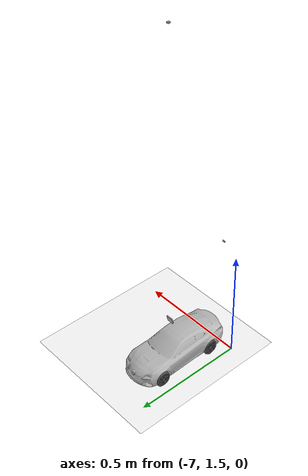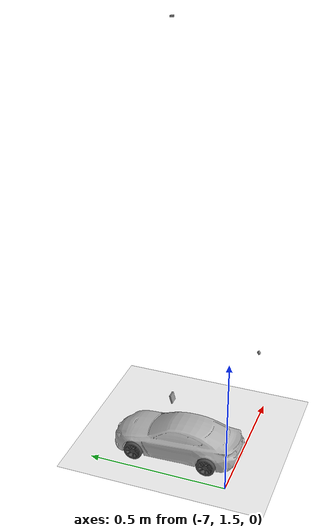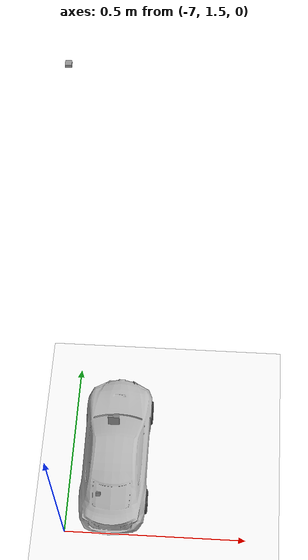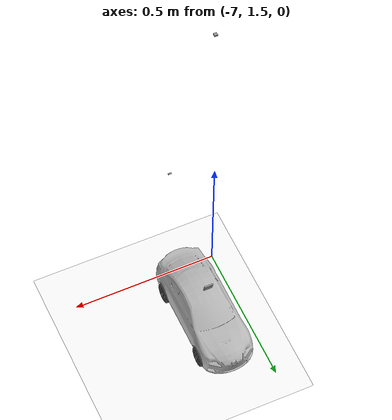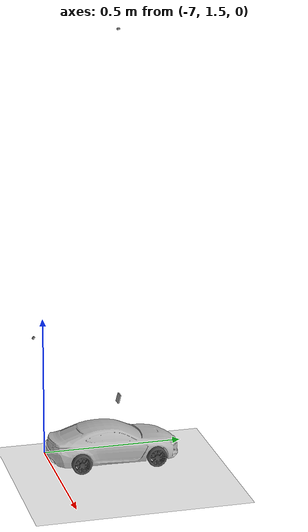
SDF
<sdf version="1.7">
 <world name="default">
  <light name="sun" type="directional">
   <pose>0 0 10 0 -0 0</pose>
   <diffuse>0.8 0.8 0.8 1</diffuse>
   <specular>0.2 0.2 0.2 1</specular>
   <attenuation>
    <range>1000</range>
    <constant>0.9</constant>
    <linear>0.01</linear>
    <quadratic>0.001</quadratic>
   </attenuation>
   <direction>-0.5 0.1 -0.9</direction>
   <spot><inner_angle>0</inner_angle><outer_angle>0</outer_angle><falloff>0</falloff></spot>
  </light>
  <gravity>0 0 -9.8</gravity>
  <magnetic_field>6e-06 2.3e-05 -4.2e-05</magnetic_field>
  <atmosphere type="adiabatic"/>
  <physics type="ode">
   <max_step_size>0.001</max_step_size>
   <real_time_factor>1</real_time_factor>
   <real_time_update_rate>1000</real_time_update_rate>
  </physics>
  <scene><ambient>0.4 0.4 0.4 1</ambient><background>0.7 0.7 0.7 1</background><shadows>1</shadows></scene>
  <spherical_coordinates>
   <surface_model>EARTH_WGS84</surface_model>
   <latitude_deg>0</latitude_deg>
   <longitude_deg>0</longitude_deg>
   <elevation>0</elevation>
   <heading_deg>0</heading_deg>
  </spherical_coordinates>
  <model name="track">
   <static>1</static>
   <link name="link">
    <collision name="collision">
     <geometry><plane><normal>0 0 1</normal><size>14.68 14.99</size></plane></geometry>
     <surface>
      <contact><collide_bitmask>65535</collide_bitmask></contact>
      <friction><ode><mu>1</mu><mu2>1</mu2></ode></friction>
     </surface>
    </collision>
    <visual name="visual">
     <geometry><plane><normal>0 0 1</normal><size>14.68 14.99</size></plane></geometry>
     <material>
      <ambient>1 1 1 1</ambient>
      <diffuse>1 1 1 1</diffuse>
      <specular>0 0 0 0</specular>
      <emissive>1 1 1 1</emissive>
      <script>
       <uri>model://track/materials/scripts</uri>
       <uri>model://track/materials/textures</uri>
       <name>BFMC_MATERIAL</name>
      </script>
     </material>
    </visual>
   </link>
  </model>
  <model name="automobile">
   <link name="chassis::link">
    <inertial>
     <mass>0.26244</mass>
     <inertia>
      <ixx>0.00283444</ixx>
      <ixy>0</ixy>
      <ixz>0</ixz>
      <iyy>0.00039867</iyy>
      <iyz>0</iyz>
      <izz>0.00323293</izz>
     </inertia>
    </inertial>
    <pose>0 0 0 0 -0 1.5708</pose>
    <visual name="visual">
     <pose>0 0 -0.0065 0 0 -1.57079</pose>
     <geometry><mesh><uri>model://chassis/meshes/chassisV5.dae</uri><scale>1 1 1</scale></mesh></geometry>
     <material>
      <lighting>1</lighting>
      <shader type="vertex"><normal_map>__default__</normal_map></shader>
      <ambient>0.6 0.6 0.6 1</ambient>
      <diffuse>0.85 0.85 0.85 1</diffuse>
      <specular>0.6 0.6 0.6 1</specular>
      <emissive>0 0 0 1</emissive>
      <script><name>ModelPreview_4::chassis::link::visual_MATERIAL_</name><uri>__default__</uri></script>
     </material>
    </visual>
    <collision name="collision">
     <geometry><box><size>0.135 0.36 0.002</size></box></geometry>
     <surface>
      <friction>
       <ode><mu>1</mu><mu2>1</mu2><fdir1>0 0 0</fdir1><slip1>0</slip1><slip2>0</slip2></ode>
       <torsional>
        <coefficient>1</coefficient>
        <patch_radius>0</patch_radius>
        <surface_radius>0</surface_radius>
        <use_patch_radius>1</use_patch_radius>
        <ode><slip>0</slip></ode>
       </torsional>
      </friction>
      <bounce><restitution_coefficient>0</restitution_coefficient><threshold>1e+06</threshold></bounce>
      <contact>
       <collide_without_contact>0</collide_without_contact>
       <collide_without_contact_bitmask>1</collide_without_contact_bitmask>
       <collide_bitmask>1</collide_bitmask>
       <ode>
        <soft_cfm>0</soft_cfm>
        <soft_erp>0.2</soft_erp>
        <kp>1e+13</kp>
        <kd>1</kd>
        <max_vel>0.01</max_vel>
        <min_depth>0</min_depth>
       </ode>
       <bullet>
        <split_impulse>1</split_impulse>
        <split_impulse_penetration_threshold>-0.01</split_impulse_penetration_threshold>
        <soft_cfm>0</soft_cfm>
        <soft_erp>0.2</soft_erp>
        <kp>1e+13</kp>
        <kd>1</kd>
       </bullet>
      </contact>
     </surface>
    </collision>
   </link>
   <link name="cam_birdeye_REC::link_camera">
    <inertial>
     <mass>0.001</mass>
     <inertia><ixx>4.1e-07</ixx><ixy>0</ixy><ixz>0</ixz><iyy>7.9e-07</iyy><iyz>0</iyz><izz>4.1e-07</izz></inertia>
    </inertial>
    <pose>0 0 1.5 0 1.57079 0</pose>
    <sensor name="camera1" type="camera">
     <update_rate>30</update_rate>
     <camera name="head">
      <horizontal_fov>2</horizontal_fov>
      <image><width>640</width><height>480</height><format>R8G8B8</format></image>
      <clip><near>0.02</near><far>100</far></clip>
      <noise><type>gaussian</type><mean>0</mean><stddev>0</stddev></noise>
     </camera>
     <plugin name="camera_controller" filename="libgazebo_ros_camera.so">
      <alwaysOn>1</alwaysOn>
      <updateRate>0.0</updateRate>
      <cameraName>/rcCar/camera_birdeye</cameraName>
      <imageTopicName>image_raw</imageTopicName>
      <cameraInfoTopicName>camera_info</cameraInfoTopicName>
      <frameName>cam_birdeye_REC::link_camera</frameName>
      <ros>
       <namespace>camera</namespace>
       <remapping>image_raw:=image</remapping>
       <remapping>camera_info:=camera_info</remapping>
      </ros>
      <hackBaseline>0.0</hackBaseline>
      <distortionK1>0.0</distortionK1>
      <distortionK2>0.0</distortionK2>
      <distortionK3>0.0</distortionK3>
      <distortionT1>0.0</distortionT1>
      <distortionT2>0.0</distortionT2>
     </plugin>
    </sensor>
    <visual name="visual">
     <geometry><box><size>0.005 0.01 0.01</size></box></geometry>
     <material>
      <lighting>1</lighting>
      <script><uri>file://media/materials/scripts/gazebo.material</uri><name>Gazebo/Grey</name></script>
      <shader type="vertex"><normal_map>__default__</normal_map></shader>
      <ambient>0.3 0.3 0.3 1</ambient>
      <diffuse>0.7 0.7 0.7 1</diffuse>
      <specular>0.01 0.01 0.01 1</specular>
      <emissive>0 0 0 1</emissive>
     </material>
    </visual>
    <collision name="collision">
     <geometry><box><size>0.005 0.01 0.01</size></box></geometry>
     <surface>
      <friction>
       <ode><mu>1</mu><mu2>1</mu2><fdir1>0 0 0</fdir1><slip1>0</slip1><slip2>0</slip2></ode>
       <torsional>
        <coefficient>1</coefficient>
        <patch_radius>0</patch_radius>
        <surface_radius>0</surface_radius>
        <use_patch_radius>1</use_patch_radius>
        <ode><slip>0</slip></ode>
       </torsional>
      </friction>
      <bounce><restitution_coefficient>0</restitution_coefficient><threshold>1e+06</threshold></bounce>
      <contact>
       <collide_without_contact>0</collide_without_contact>
       <collide_without_contact_bitmask>1</collide_without_contact_bitmask>
       <collide_bitmask>1</collide_bitmask>
       <ode>
        <soft_cfm>0</soft_cfm>
        <soft_erp>0.2</soft_erp>
        <kp>1e+13</kp>
        <kd>1</kd>
        <max_vel>0.01</max_vel>
        <min_depth>0</min_depth>
       </ode>
       <bullet>
        <split_impulse>1</split_impulse>
        <split_impulse_penetration_threshold>-0.01</split_impulse_penetration_threshold>
        <soft_cfm>0</soft_cfm>
        <soft_erp>0.2</soft_erp>
        <kp>1e+13</kp>
        <kd>1</kd>
       </bullet>
      </contact>
     </surface>
    </collision>
   </link>
   <link name="camera::link_camera">
    <inertial>
     <mass>0.0052875</mass>
     <inertia><ixx>4.1e-07</ixx><ixy>0</ixy><ixz>0</ixz><iyy>7.9e-07</iyy><iyz>0</iyz><izz>4.1e-07</izz></inertia>
    </inertial>
    <pose>0 0 0.2 0 0.2617 0</pose>
    <sensor name="camera1" type="camera">
     <update_rate>30</update_rate>
     <camera name="head">
      <horizontal_fov>1.08559</horizontal_fov>
      <image><width>640</width><height>480</height><format>R8G8B8</format></image>
      <clip><near>0.02</near><far>100</far></clip>
      <noise><type>gaussian</type><mean>0</mean><stddev>0</stddev></noise>
     </camera>
     <plugin name="camera_controller" filename="libgazebo_ros_camera.so">
      <alwaysOn>1</alwaysOn>
      <updateRate>0.0</updateRate>
      <imageTopicName>image_raw</imageTopicName>
      <cameraInfoTopicName>camera_info</cameraInfoTopicName>
      <frameName>camera::link_camera</frameName>
      <ros>
       <namespace>camera_follow</namespace>
       <remapping>image_raw:=image</remapping>
       <remapping>camera_info:=camera_info</remapping>
      </ros>
      <hackBaseline>0.0</hackBaseline>
      <distortionK1>0.0</distortionK1>
      <distortionK2>0.0</distortionK2>
      <distortionK3>0.0</distortionK3>
      <distortionT1>0.0</distortionT1>
      <distortionT2>0.0</distortionT2>
     </plugin>
    </sensor>
    <visual name="visual">
     <geometry><box><size>0.005 0.03 0.03</size></box></geometry>
     <material>
      <lighting>1</lighting>
      <script><uri>file://media/materials/scripts/gazebo.material</uri><name>Gazebo/Grey</name></script>
      <shader type="vertex"><normal_map>__default__</normal_map></shader>
      <ambient>0.3 0.3 0.3 1</ambient>
      <diffuse>0.7 0.7 0.7 1</diffuse>
      <specular>0.01 0.01 0.01 1</specular>
      <emissive>0 0 0 1</emissive>
     </material>
    </visual>
    <collision name="collision">
     <geometry><box><size>0.005 0.03 0.03</size></box></geometry>
     <surface>
      <friction>
       <ode><mu>1</mu><mu2>1</mu2><fdir1>0 0 0</fdir1><slip1>0</slip1><slip2>0</slip2></ode>
       <torsional>
        <coefficient>1</coefficient>
        <patch_radius>0</patch_radius>
        <surface_radius>0</surface_radius>
        <use_patch_radius>1</use_patch_radius>
        <ode><slip>0</slip></ode>
       </torsional>
      </friction>
      <bounce><restitution_coefficient>0</restitution_coefficient><threshold>1e+06</threshold></bounce>
      <contact>
       <collide_without_contact>0</collide_without_contact>
       <collide_without_contact_bitmask>1</collide_without_contact_bitmask>
       <collide_bitmask>1</collide_bitmask>
       <ode>
        <soft_cfm>0</soft_cfm>
        <soft_erp>0.2</soft_erp>
        <kp>1e+13</kp>
        <kd>1</kd>
        <max_vel>0.01</max_vel>
        <min_depth>0</min_depth>
       </ode>
       <bullet>
        <split_impulse>1</split_impulse>
        <split_impulse_penetration_threshold>-0.01</split_impulse_penetration_threshold>
        <soft_cfm>0</soft_cfm>
        <soft_erp>0.2</soft_erp>
        <kp>1e+13</kp>
        <kd>1</kd>
       </bullet>
      </contact>
     </surface>
    </collision>
   </link>
   <link name="camera_follow::link_camera">
    <inertial>
     <mass>0.001</mass>
     <inertia><ixx>4.1e-07</ixx><ixy>0</ixy><ixz>0</ixz><iyy>7.9e-07</iyy><iyz>0</iyz><izz>4.1e-07</izz></inertia>
    </inertial>
    <pose>-0.3 0 0.45 0 0.6 0</pose>
    <sensor name="camera1" type="camera">
     <update_rate>30</update_rate>
     <camera name="head">
      <horizontal_fov>1.3708</horizontal_fov>
      <image><width>1920</width><height>1080</height><format>R8G8B8</format></image>
      <clip><near>0.02</near><far>100</far></clip>
      <noise><type>gaussian</type><mean>0</mean><stddev>0</stddev></noise>
     </camera>
     <plugin name="camera_controller" filename="libgazebo_ros_camera.so">
      <alwaysOn>1</alwaysOn>
      <updateRate>0.0</updateRate>
      <cameraName>/rcCar/camera_follow</cameraName>
      <imageTopicName>image_raw</imageTopicName>
      <cameraInfoTopicName>camera_info</cameraInfoTopicName>
      <frameName>camera_follow::link_camera</frameName>
      <ros>
       <namespace>camera_birdeye</namespace>
       <remapping>image_raw:=image</remapping>
       <remapping>camera_info:=camera_info</remapping>
      </ros>
      <hackBaseline>0.0</hackBaseline>
      <distortionK1>0.0</distortionK1>
      <distortionK2>0.0</distortionK2>
      <distortionK3>0.0</distortionK3>
      <distortionT1>0.0</distortionT1>
      <distortionT2>0.0</distortionT2>
     </plugin>
    </sensor>
    <visual name="visual">
     <geometry><box><size>0.005 0.01 0.01</size></box></geometry>
     <material>
      <lighting>1</lighting>
      <script><uri>file://media/materials/scripts/gazebo.material</uri><name>Gazebo/Grey</name></script>
      <shader type="vertex"><normal_map>__default__</normal_map></shader>
      <ambient>0.3 0.3 0.3 1</ambient>
      <diffuse>0.7 0.7 0.7 1</diffuse>
      <specular>0.01 0.01 0.01 1</specular>
      <emissive>0 0 0 1</emissive>
     </material>
    </visual>
    <collision name="collision">
     <geometry><box><size>0.005 0.01 0.01</size></box></geometry>
     <surface>
      <friction>
       <ode><mu>1</mu><mu2>1</mu2><fdir1>0 0 0</fdir1><slip1>0</slip1><slip2>0</slip2></ode>
       <torsional>
        <coefficient>1</coefficient>
        <patch_radius>0</patch_radius>
        <surface_radius>0</surface_radius>
        <use_patch_radius>1</use_patch_radius>
        <ode><slip>0</slip></ode>
       </torsional>
      </friction>
      <bounce><restitution_coefficient>0</restitution_coefficient><threshold>1e+06</threshold></bounce>
      <contact>
       <collide_without_contact>0</collide_without_contact>
       <collide_without_contact_bitmask>1</collide_without_contact_bitmask>
       <collide_bitmask>1</collide_bitmask>
       <ode>
        <soft_cfm>0</soft_cfm>
        <soft_erp>0.2</soft_erp>
        <kp>1e+13</kp>
        <kd>1</kd>
        <max_vel>0.01</max_vel>
        <min_depth>0</min_depth>
       </ode>
       <bullet>
        <split_impulse>1</split_impulse>
        <split_impulse_penetration_threshold>-0.01</split_impulse_penetration_threshold>
        <soft_cfm>0</soft_cfm>
        <soft_erp>0.2</soft_erp>
        <kp>1e+13</kp>
        <kd>1</kd>
       </bullet>
      </contact>
     </surface>
    </collision>
   </link>
   <link name="car_body::link">
    <inertial>
     <mass>1</mass>
     <inertia>
      <ixx>0.166667</ixx>
      <ixy>0</ixy>
      <ixz>0</ixz>
      <iyy>0.166667</iyy>
      <iyz>0</iyz>
      <izz>0.166667</izz>
     </inertia>
    </inertial>
    <pose>-0.024 0 -0.028 0 -0 0</pose>
    <visual name="visual">
     <geometry><mesh><uri>model://car_body/meshes/CarBody.dae</uri><scale>1 1 1</scale></mesh></geometry>
     <material>
      <script>
       <uri>model://car_body/materials/scripts</uri>
       <uri>model://car_body/materials/textures</uri>
       <name>CarBody/Image</name>
      </script>
      <shader type="pixel"/>
     </material>
    </visual>
   </link>
   <link name="steer_left::link_steer">
    <inertial>
     <mass>0.001</mass>
     <inertia>
      <ixx>0.00014583</ixx>
      <ixy>0</ixy>
      <ixz>0</ixz>
      <iyy>0.00014583</iyy>
      <iyz>0</iyz>
      <izz>0.000125</izz>
     </inertia>
    </inertial>
    <pose>0.112 0.0725 0 1.5708 -0 0</pose>
    <visual name="visual">
     <geometry><cylinder><radius>0.001</radius><length>0.01</length></cylinder></geometry>
     <material>
      <lighting>1</lighting>
      <script><uri>file://media/materials/scripts/gazebo.material</uri><name>Gazebo/Grey</name></script>
      <shader type="vertex"><normal_map>__default__</normal_map></shader>
      <ambient>0.3 0.3 0.3 1</ambient>
      <diffuse>0.7 0.7 0.7 1</diffuse>
      <specular>0.01 0.01 0.01 1</specular>
      <emissive>0 0 0 1</emissive>
     </material>
    </visual>
    <collision name="collision">
     <geometry><cylinder><radius>0.001</radius><length>0.01</length></cylinder></geometry>
     <surface>
      <friction>
       <ode><mu>1</mu><mu2>1</mu2><fdir1>0 0 0</fdir1><slip1>0</slip1><slip2>0</slip2></ode>
       <torsional>
        <coefficient>1</coefficient>
        <patch_radius>0</patch_radius>
        <surface_radius>0</surface_radius>
        <use_patch_radius>1</use_patch_radius>
        <ode><slip>0</slip></ode>
       </torsional>
      </friction>
      <bounce><restitution_coefficient>0</restitution_coefficient><threshold>1e+06</threshold></bounce>
      <contact>
       <collide_without_contact>0</collide_without_contact>
       <collide_without_contact_bitmask>1</collide_without_contact_bitmask>
       <collide_bitmask>1</collide_bitmask>
       <ode>
        <soft_cfm>0</soft_cfm>
        <soft_erp>0.2</soft_erp>
        <kp>1e+13</kp>
        <kd>1</kd>
        <max_vel>0.01</max_vel>
        <min_depth>0</min_depth>
       </ode>
       <bullet>
        <split_impulse>1</split_impulse>
        <split_impulse_penetration_threshold>-0.01</split_impulse_penetration_threshold>
        <soft_cfm>0</soft_cfm>
        <soft_erp>0.2</soft_erp>
        <kp>1e+13</kp>
        <kd>1</kd>
       </bullet>
      </contact>
     </surface>
    </collision>
   </link>
   <link name="steer_right::link_steer">
    <inertial>
     <mass>0.001</mass>
     <inertia>
      <ixx>0.00014583</ixx>
      <ixy>0</ixy>
      <ixz>0</ixz>
      <iyy>0.00014583</iyy>
      <iyz>0</iyz>
      <izz>0.000125</izz>
     </inertia>
    </inertial>
    <pose>0.112 -0.0725 0 1.5708 -0 0</pose>
    <visual name="visual">
     <geometry><cylinder><radius>0.001</radius><length>0.01</length></cylinder></geometry>
     <material>
      <lighting>1</lighting>
      <script><uri>file://media/materials/scripts/gazebo.material</uri><name>Gazebo/Grey</name></script>
      <shader type="vertex"><normal_map>__default__</normal_map></shader>
      <ambient>0.3 0.3 0.3 1</ambient>
      <diffuse>0.7 0.7 0.7 1</diffuse>
      <specular>0.01 0.01 0.01 1</specular>
      <emissive>0 0 0 1</emissive>
     </material>
    </visual>
    <collision name="collision">
     <geometry><cylinder><radius>0.001</radius><length>0.01</length></cylinder></geometry>
     <surface>
      <friction>
       <ode><mu>1</mu><mu2>1</mu2><fdir1>0 0 0</fdir1><slip1>0</slip1><slip2>0</slip2></ode>
       <torsional>
        <coefficient>1</coefficient>
        <patch_radius>0</patch_radius>
        <surface_radius>0</surface_radius>
        <use_patch_radius>1</use_patch_radius>
        <ode><slip>0</slip></ode>
       </torsional>
      </friction>
      <bounce><restitution_coefficient>0</restitution_coefficient><threshold>1e+06</threshold></bounce>
      <contact>
       <collide_without_contact>0</collide_without_contact>
       <collide_without_contact_bitmask>1</collide_without_contact_bitmask>
       <collide_bitmask>1</collide_bitmask>
       <ode>
        <soft_cfm>0</soft_cfm>
        <soft_erp>0.2</soft_erp>
        <kp>1e+13</kp>
        <kd>1</kd>
        <max_vel>0.01</max_vel>
        <min_depth>0</min_depth>
       </ode>
       <bullet>
        <split_impulse>1</split_impulse>
        <split_impulse_penetration_threshold>-0.01</split_impulse_penetration_threshold>
        <soft_cfm>0</soft_cfm>
        <soft_erp>0.2</soft_erp>
        <kp>1e+13</kp>
        <kd>1</kd>
       </bullet>
      </contact>
     </surface>
    </collision>
   </link>
   <link name="wheel_front_left::link_rim">
    <inertial>
     <mass>0.038</mass>
     <inertia>
      <ixx>1.283e-05</ixx>
      <ixy>0</ixy>
      <ixz>0</ixz>
      <iyy>1.283e-05</iyy>
      <iyz>0</iyz>
      <izz>2.069e-05</izz>
     </inertia>
    </inertial>
    <pose>0.118 0.081 0 1.5708 -0 0</pose>
    <visual name="visual">
     <pose>0 0 0 -1.5708 0 0</pose>
     <geometry><mesh><uri>model://wheel_left/meshes/rim.dae</uri><scale>1 1 1</scale></mesh></geometry>
     <material>
      <lighting>1</lighting>
      <shader type="vertex"><normal_map>__default__</normal_map></shader>
      <ambient>0.2 0.2 0.2 1</ambient>
      <diffuse>0.3 0.3 0.3 1</diffuse>
      <specular>0.5 0.5 0.5 1</specular>
      <emissive>0 0 0 0</emissive>
      <script>
       <name>ModelPreview_4::wheel_front_left::link_rim::visual_MATERIAL_</name>
       <uri>__default__</uri>
      </script>
     </material>
    </visual>
    <collision name="collision">
     <geometry><cylinder><radius>0.033</radius><length>0.028</length></cylinder></geometry>
     <surface>
      <friction>
       <ode><mu>0.7</mu><mu2>0.7</mu2><fdir1>0 0 0</fdir1><slip1>0</slip1><slip2>0</slip2></ode>
       <torsional>
        <coefficient>1</coefficient>
        <patch_radius>0</patch_radius>
        <surface_radius>0</surface_radius>
        <use_patch_radius>1</use_patch_radius>
        <ode><slip>0</slip></ode>
       </torsional>
      </friction>
      <bounce><restitution_coefficient>0</restitution_coefficient><threshold>1e+06</threshold></bounce>
      <contact>
       <collide_without_contact>0</collide_without_contact>
       <collide_without_contact_bitmask>1</collide_without_contact_bitmask>
       <collide_bitmask>1</collide_bitmask>
       <ode>
        <soft_cfm>0</soft_cfm>
        <soft_erp>0.2</soft_erp>
        <kp>1e+07</kp>
        <kd>1</kd>
        <max_vel>0.01</max_vel>
        <min_depth>0</min_depth>
       </ode>
       <bullet>
        <split_impulse>1</split_impulse>
        <split_impulse_penetration_threshold>-0.01</split_impulse_penetration_threshold>
        <soft_cfm>0</soft_cfm>
        <soft_erp>0.2</soft_erp>
        <kp>1e+07</kp>
        <kd>1</kd>
       </bullet>
      </contact>
     </surface>
    </collision>
   </link>
   <link name="wheel_front_right::link_rim">
    <inertial>
     <mass>0.038</mass>
     <inertia>
      <ixx>1.283e-05</ixx>
      <ixy>0</ixy>
      <ixz>0</ixz>
      <iyy>1.283e-05</iyy>
      <iyz>0</iyz>
      <izz>2.069e-05</izz>
     </inertia>
    </inertial>
    <pose>0.118 -0.081 0 1.5708 -0 0</pose>
    <visual name="visual">
     <pose>0 0 0 -1.5708 0 0</pose>
     <geometry><mesh><uri>model://wheel_right/meshes/rim.dae</uri><scale>1 1 1</scale></mesh></geometry>
     <material>
      <lighting>1</lighting>
      <shader type="vertex"><normal_map>__default__</normal_map></shader>
      <ambient>0.2 0.2 0.2 1</ambient>
      <diffuse>0.3 0.3 0.3 1</diffuse>
      <specular>0.5 0.5 0.5 1</specular>
      <emissive>0 0 0 0</emissive>
      <script>
       <name>ModelPreview_4::wheel_front_right::link_rim::visual_MATERIAL_</name>
       <uri>__default__</uri>
      </script>
     </material>
    </visual>
    <collision name="collision">
     <geometry><cylinder><radius>0.033</radius><length>0.028</length></cylinder></geometry>
     <surface>
      <friction>
       <ode><mu>0.7</mu><mu2>0.7</mu2><fdir1>0 0 0</fdir1><slip1>0</slip1><slip2>0</slip2></ode>
       <torsional>
        <coefficient>1</coefficient>
        <patch_radius>0</patch_radius>
        <surface_radius>0</surface_radius>
        <use_patch_radius>1</use_patch_radius>
        <ode><slip>0</slip></ode>
       </torsional>
      </friction>
      <bounce><restitution_coefficient>0</restitution_coefficient><threshold>1e+06</threshold></bounce>
      <contact>
       <collide_without_contact>0</collide_without_contact>
       <collide_without_contact_bitmask>1</collide_without_contact_bitmask>
       <collide_bitmask>1</collide_bitmask>
       <ode>
        <soft_cfm>0</soft_cfm>
        <soft_erp>0.2</soft_erp>
        <kp>1e+07</kp>
        <kd>1</kd>
        <max_vel>0.01</max_vel>
        <min_depth>0</min_depth>
       </ode>
       <bullet>
        <split_impulse>1</split_impulse>
        <split_impulse_penetration_threshold>-0.01</split_impulse_penetration_threshold>
        <soft_cfm>0</soft_cfm>
        <soft_erp>0.2</soft_erp>
        <kp>1e+07</kp>
        <kd>1</kd>
       </bullet>
      </contact>
     </surface>
    </collision>
   </link>
   <link name="wheel_rear_left::link_rim">
    <inertial>
     <mass>0.038</mass>
     <inertia>
      <ixx>1.283e-05</ixx>
      <ixy>0</ixy>
      <ixz>0</ixz>
      <iyy>1.283e-05</iyy>
      <iyz>0</iyz>
      <izz>2.069e-05</izz>
     </inertia>
    </inertial>
    <pose>-0.152 0.081 0 1.5708 -0 0</pose>
    <visual name="visual">
     <pose>0 0 0 -1.5708 0 0</pose>
     <geometry><mesh><uri>model://wheel_left/meshes/rim.dae</uri><scale>1 1 1</scale></mesh></geometry>
     <material>
      <lighting>1</lighting>
      <shader type="vertex"><normal_map>__default__</normal_map></shader>
      <ambient>0.2 0.2 0.2 1</ambient>
      <diffuse>0.3 0.3 0.3 1</diffuse>
      <specular>0.5 0.5 0.5 1</specular>
      <emissive>0 0 0 0</emissive>
      <script>
       <name>ModelPreview_4::wheel_rear_left::link_rim::visual_MATERIAL_</name>
       <uri>__default__</uri>
      </script>
     </material>
    </visual>
    <collision name="collision">
     <geometry><cylinder><radius>0.033</radius><length>0.028</length></cylinder></geometry>
     <surface>
      <friction>
       <ode><mu>0.7</mu><mu2>0.7</mu2><fdir1>0 0 0</fdir1><slip1>0</slip1><slip2>0</slip2></ode>
       <torsional>
        <coefficient>1</coefficient>
        <patch_radius>0</patch_radius>
        <surface_radius>0</surface_radius>
        <use_patch_radius>1</use_patch_radius>
        <ode><slip>0</slip></ode>
       </torsional>
      </friction>
      <bounce><restitution_coefficient>0</restitution_coefficient><threshold>1e+06</threshold></bounce>
      <contact>
       <collide_without_contact>0</collide_without_contact>
       <collide_without_contact_bitmask>1</collide_without_contact_bitmask>
       <collide_bitmask>1</collide_bitmask>
       <ode>
        <soft_cfm>0</soft_cfm>
        <soft_erp>0.2</soft_erp>
        <kp>1e+07</kp>
        <kd>1</kd>
        <max_vel>0.01</max_vel>
        <min_depth>0</min_depth>
       </ode>
       <bullet>
        <split_impulse>1</split_impulse>
        <split_impulse_penetration_threshold>-0.01</split_impulse_penetration_threshold>
        <soft_cfm>0</soft_cfm>
        <soft_erp>0.2</soft_erp>
        <kp>1e+07</kp>
        <kd>1</kd>
       </bullet>
      </contact>
     </surface>
    </collision>
   </link>
   <link name="wheel_rear_right::link_rim">
    <inertial>
     <mass>0.038</mass>
     <inertia>
      <ixx>1.283e-05</ixx>
      <ixy>0</ixy>
      <ixz>0</ixz>
      <iyy>1.283e-05</iyy>
      <iyz>0</iyz>
      <izz>2.069e-05</izz>
     </inertia>
    </inertial>
    <pose>-0.152 -0.081 0 1.5708 -0 0</pose>
    <visual name="visual">
     <pose>0 0 0 -1.5708 0 0</pose>
     <geometry><mesh><uri>model://wheel_right/meshes/rim.dae</uri><scale>1 1 1</scale></mesh></geometry>
     <material>
      <lighting>1</lighting>
      <shader type="vertex"><normal_map>__default__</normal_map></shader>
      <ambient>0.2 0.2 0.2 1</ambient>
      <diffuse>0.3 0.3 0.3 1</diffuse>
      <specular>0.5 0.5 0.5 1</specular>
      <emissive>0 0 0 0</emissive>
      <script>
       <name>ModelPreview_4::wheel_rear_right::link_rim::visual_MATERIAL_</name>
       <uri>__default__</uri>
      </script>
     </material>
    </visual>
    <collision name="collision">
     <geometry><cylinder><radius>0.033</radius><length>0.028</length></cylinder></geometry>
     <surface>
      <friction>
       <ode><mu>0.7</mu><mu2>0.7</mu2><fdir1>0 0 0</fdir1><slip1>0</slip1><slip2>0</slip2></ode>
       <torsional>
        <coefficient>1</coefficient>
        <patch_radius>0</patch_radius>
        <surface_radius>0</surface_radius>
        <use_patch_radius>1</use_patch_radius>
        <ode><slip>0</slip></ode>
       </torsional>
      </friction>
      <bounce><restitution_coefficient>0</restitution_coefficient><threshold>1e+06</threshold></bounce>
      <contact>
       <collide_without_contact>0</collide_without_contact>
       <collide_without_contact_bitmask>1</collide_without_contact_bitmask>
       <collide_bitmask>1</collide_bitmask>
       <ode>
        <soft_cfm>0</soft_cfm>
        <soft_erp>0.2</soft_erp>
        <kp>1e+07</kp>
        <kd>1</kd>
        <max_vel>0.01</max_vel>
        <min_depth>0</min_depth>
       </ode>
       <bullet>
        <split_impulse>1</split_impulse>
        <split_impulse_penetration_threshold>-0.01</split_impulse_penetration_threshold>
        <soft_cfm>0</soft_cfm>
        <soft_erp>0.2</soft_erp>
        <kp>1e+07</kp>
        <kd>1</kd>
       </bullet>
      </contact>
     </surface>
    </collision>
   </link>
   <joint name="joint_body" type="fixed">
    <parent>chassis::link</parent>
    <child>car_body::link</child>
    <physics>
     <ode><limit><cfm>0</cfm><erp>0.2</erp></limit><suspension><cfm>0</cfm><erp>0.2</erp></suspension></ode>
    </physics>
   </joint>
   <joint name="joint_cam_birdeye_REC" type="fixed">
    <parent>chassis::link</parent>
    <child>cam_birdeye_REC::link_camera</child>
    <physics>
     <ode><limit><cfm>0</cfm><erp>0.2</erp></limit><suspension><cfm>0</cfm><erp>0.2</erp></suspension></ode>
    </physics>
   </joint>
   <joint name="joint_camera" type="fixed">
    <parent>chassis::link</parent>
    <child>camera::link_camera</child>
    <physics>
     <ode><limit><cfm>0</cfm><erp>0.2</erp></limit><suspension><cfm>0</cfm><erp>0.2</erp></suspension></ode>
    </physics>
   </joint>
   <joint name="joint_camera_follow" type="fixed">
    <parent>chassis::link</parent>
    <child>camera_follow::link_camera</child>
    <physics>
     <ode><limit><cfm>0</cfm><erp>0.2</erp></limit><suspension><cfm>0</cfm><erp>0.2</erp></suspension></ode>
    </physics>
   </joint>
   <joint name="joint_leftfront_rim" type="revolute">
    <parent>steer_left::link_steer</parent>
    <child>wheel_front_left::link_rim</child>
    <axis>
     <xyz>0 0 -1</xyz>
     <limit>
      <lower>-1.79769e+308</lower>
      <upper>1.79769e+308</upper>
      <effort>-1</effort>
      <velocity>-1</velocity>
     </limit>
     <dynamics>
      <spring_reference>0</spring_reference>
      <spring_stiffness>0</spring_stiffness>
      <damping>0</damping>
      <friction>0</friction>
     </dynamics>
    </axis>
    <physics>
     <ode><limit><cfm>0</cfm><erp>0.2</erp></limit><suspension><cfm>0</cfm><erp>0.2</erp></suspension></ode>
    </physics>
   </joint>
   <joint name="joint_leftfront_steer" type="revolute">
    <parent>chassis::link</parent>
    <child>steer_left::link_steer</child>
    <pose>0 0 0.005 0 -0 0</pose>
    <axis>
     <xyz>0 1 0</xyz>
     <limit>
      <lower>-1.79769e+308</lower>
      <upper>1.79769e+308</upper>
      <effort>-1</effort>
      <velocity>-1</velocity>
     </limit>
     <dynamics>
      <spring_reference>0</spring_reference>
      <spring_stiffness>0</spring_stiffness>
      <damping>0</damping>
      <friction>0</friction>
     </dynamics>
    </axis>
    <physics>
     <ode><limit><cfm>0</cfm><erp>0.2</erp></limit><suspension><cfm>0</cfm><erp>0.2</erp></suspension></ode>
    </physics>
   </joint>
   <joint name="joint_leftrear_rim" type="revolute">
    <parent>chassis::link</parent>
    <child>wheel_rear_left::link_rim</child>
    <axis>
     <xyz>0 0 -1</xyz>
     <limit>
      <lower>-1.79769e+308</lower>
      <upper>1.79769e+308</upper>
      <effort>-1</effort>
      <velocity>-1</velocity>
     </limit>
     <dynamics>
      <spring_reference>0</spring_reference>
      <spring_stiffness>0</spring_stiffness>
      <damping>0</damping>
      <friction>0</friction>
     </dynamics>
    </axis>
    <physics>
     <ode><limit><cfm>0</cfm><erp>0.2</erp></limit><suspension><cfm>0</cfm><erp>0.2</erp></suspension></ode>
    </physics>
   </joint>
   <joint name="joint_rightfront_rim" type="revolute">
    <parent>steer_right::link_steer</parent>
    <child>wheel_front_right::link_rim</child>
    <axis>
     <xyz>0 0 -1</xyz>
     <limit>
      <lower>-1.79769e+308</lower>
      <upper>1.79769e+308</upper>
      <effort>-1</effort>
      <velocity>-1</velocity>
     </limit>
     <dynamics>
      <spring_reference>0</spring_reference>
      <spring_stiffness>0</spring_stiffness>
      <damping>0</damping>
      <friction>0</friction>
     </dynamics>
    </axis>
    <physics>
     <ode><limit><cfm>0</cfm><erp>0.2</erp></limit><suspension><cfm>0</cfm><erp>0.2</erp></suspension></ode>
    </physics>
   </joint>
   <joint name="joint_rightfront_steer" type="revolute">
    <parent>chassis::link</parent>
    <child>steer_right::link_steer</child>
    <pose>0 0 -0.005 0 -0 0</pose>
    <axis>
     <xyz>0 1 0</xyz>
     <limit>
      <lower>-1.79769e+308</lower>
      <upper>1.79769e+308</upper>
      <effort>-1</effort>
      <velocity>-1</velocity>
     </limit>
     <dynamics>
      <spring_reference>0</spring_reference>
      <spring_stiffness>0</spring_stiffness>
      <damping>0</damping>
      <friction>0</friction>
     </dynamics>
    </axis>
    <physics>
     <ode><limit><cfm>0</cfm><erp>0.2</erp></limit><suspension><cfm>0</cfm><erp>0.2</erp></suspension></ode>
    </physics>
   </joint>
   <joint name="joint_rightrear_rim" type="revolute">
    <parent>chassis::link</parent>
    <child>wheel_rear_right::link_rim</child>
    <axis>
     <xyz>0 0 -1</xyz>
     <limit>
      <lower>-1.79769e+308</lower>
      <upper>1.79769e+308</upper>
      <effort>-1</effort>
      <velocity>-1</velocity>
     </limit>
     <dynamics>
      <spring_reference>0</spring_reference>
      <spring_stiffness>0</spring_stiffness>
      <damping>0</damping>
      <friction>0</friction>
     </dynamics>
    </axis>
    <physics>
     <ode><limit><cfm>0</cfm><erp>0.2</erp></limit><suspension><cfm>0</cfm><erp>0.2</erp></suspension></ode>
    </physics>
   </joint>
   <static>0</static>
   <plugin name="omni_steering" filename="libgazebo_ros_planar_move.so">
    <commandTopic>cmd_vel</commandTopic>
    <odometryTopic>odom</odometryTopic>
    <odometryFrame>odom</odometryFrame>
    <odometryRate>100</odometryRate>
    <robotBaseFrame>chassis</robotBaseFrame>
    <publishTF>0</publishTF>
   </plugin>
   <pose>-6.8712 1.73908 0.032943 1.9e-05 0.000402 1.57754</pose>
  </model>
 </world>
</sdf>
